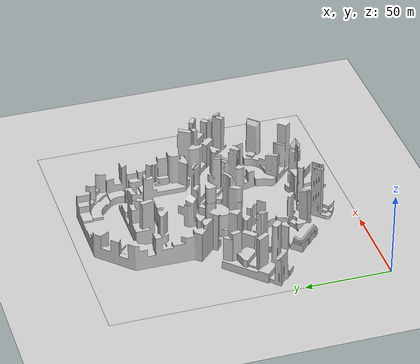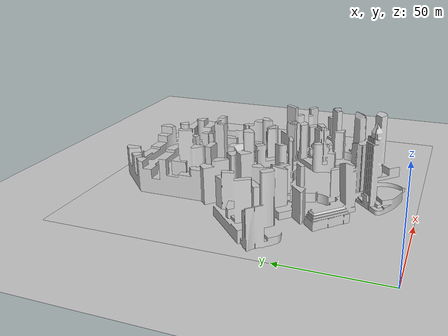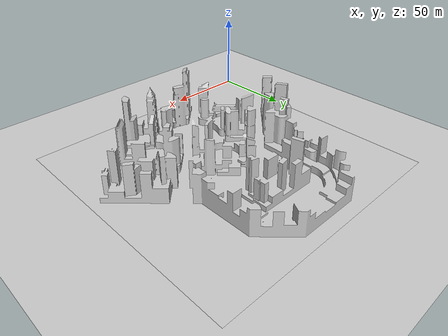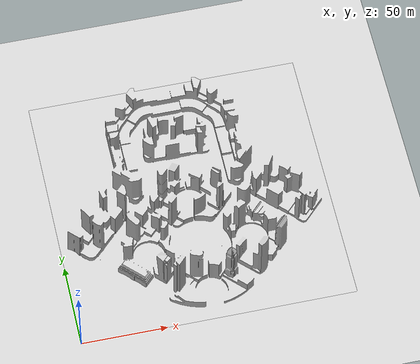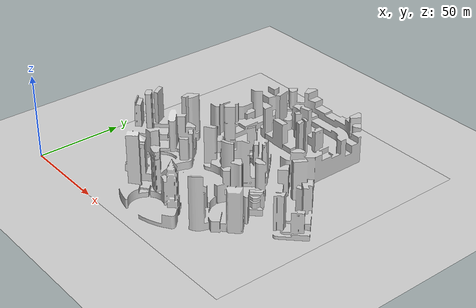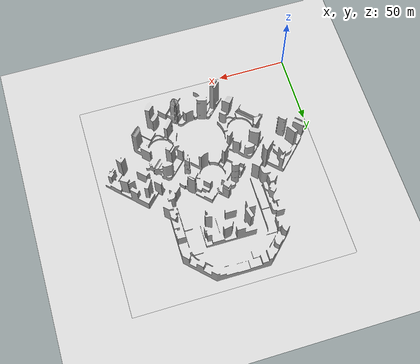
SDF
<sdf version='1.10'>
  <world name='city_1_world_arucos'>
    <physics type='ode'>
      <max_step_size>0.002</max_step_size>
      <real_time_factor>1</real_time_factor>
      <real_time_update_rate>1000</real_time_update_rate>
    </physics>
    <plugin name='gz::sim::systems::Physics' filename='libgz-sim-physics-system.so'/>
    <plugin name='gz::sim::systems::UserCommands' filename='libgz-sim-user-commands-system.so'/>
    <plugin name='gz::sim::systems::SceneBroadcaster' filename='libgz-sim-scene-broadcaster-system.so'/>
    <plugin name='gz::sim::systems::Contact' filename='libgz-sim-contact-system.so'/>
    <plugin name='gz::sim::systems::Imu' filename='libgz-sim-imu-system.so'/>
    <plugin name='gz::sim::systems::AirPressure' filename='libgz-sim-air-pressure-system.so'/>
    <plugin name='gz::sim::systems::Sensors' filename='libgz-sim-sensors-system.so'>
      <render_engine>ogre2</render_engine>
    </plugin>
    <gravity>0 0 -9.8066499999999994</gravity>
    <magnetic_field>6.0000000000000002e-06 2.3e-05 -4.1999999999999998e-05</magnetic_field>
    <atmosphere type='adiabatic'/>
    <scene>
      <grid>false</grid>
      <ambient>0.400000006 0.400000006 0.400000006 1</ambient>
      <background>0.699999988 0.699999988 0.699999988 1</background>
      <shadows>true</shadows>
    </scene>
    <model name='ground_plane'>
      <pose>60 60 0 0 0 0</pose>
      <static>true</static>
      <link name='link'>
        <collision name='collision'>
          <geometry>
            <plane>
              <normal>0 0 1</normal>
              <size>150 150</size>
            </plane>
          </geometry>
          <surface>
            <friction>
              <ode/>
            </friction>
            <bounce/>
            <contact/>
          </surface>
        </collision>
        <visual name='visual'>
          <geometry>
            <plane>
              <normal>0 0 1</normal>
              <size>150 150</size>
            </plane>
          </geometry>
          <material>
            <ambient>0.800000012 0.800000012 0.800000012 1</ambient>
            <diffuse>0.800000012 0.800000012 0.800000012 1</diffuse>
            <specular>0.800000012 0.800000012 0.800000012 1</specular>
          </material>
        </visual>
        <pose>0 0 0 0 0 0</pose>
        <inertial>
          <pose>0 0 0 0 0 0</pose>
          <mass>1</mass>
          <inertia>
            <ixx>1</ixx>
            <ixy>0</ixy>
            <ixz>0</ixz>
            <iyy>1</iyy>
            <iyz>0</iyz>
            <izz>1</izz>
          </inertia>
        </inertial>
        <enable_wind>false</enable_wind>
      </link>
      <self_collide>false</self_collide>
    </model>
    <include>
      <uri>file:///root/CrazySim/ros2_ws/src/icuas25_competition/launch/../worlds/city_1</uri>
      <name>city_1</name>
      <pose>0 0 0 0 0 0</pose>
    </include>

    <include>
      <uri>file:///root/CrazySim/ros2_ws/src/icuas25_competition/launch/../worlds/aruco_markers/aruco_marker_1</uri>
      <name>aruco_marker_1</name>
      <pose>88.587699890136719 34.341999053955078 19.570499420166016 1.5110288711004334 1.5700000418165962 0.00010043712494769711</pose>
    </include>
    <include>
      <uri>file:///root/CrazySim/ros2_ws/src/icuas25_competition/launch/../worlds/aruco_markers/aruco_marker_2</uri>
      <name>aruco_marker_2</name>
      <pose>49.917949676513672 76.811897277832031 7.4506697654724121 1.5700000042340219 0 0</pose>
    </include>
    <include>
      <uri>file:///root/CrazySim/ros2_ws/src/icuas25_competition/launch/../worlds/aruco_markers/aruco_marker_3</uri>
      <name>aruco_marker_3</name>
      <pose>20.760629653930664 47.960700988769531 5.7737393379211426 1.5701357991543534 1.5699999788855461 0.00013659516476215822</pose>
    </include>
    <include>
      <uri>file:///root/CrazySim/ros2_ws/src/icuas25_competition/launch/../worlds/aruco_markers/aruco_marker_4</uri>
      <name>aruco_marker_4</name>
      <pose>46.691200256347656 108.62621307373047 8.9865016937255859 1.5715899837054641 0.00010056037728358766 -0.12665099268998176</pose>
    </include>
    <include>
      <uri>file:///root/CrazySim/ros2_ws/src/icuas25_competition/launch/../worlds/aruco_markers/aruco_marker_5</uri>
      <name>aruco_marker_5</name>
      <pose>59.065990447998047 62.928287506103516 1.5549722909927368 1.5700000086716972 -1.9038041809693595e-08 1.5700000086716972</pose>
    </include>

    <light name='sun' type='directional'>
      <pose>0 0 100 0 0 0</pose>
      <cast_shadows>false</cast_shadows>
      <intensity>1</intensity>
      <direction>-0.5 0.10000000000000001 -0.90000000000000002</direction>
      <diffuse>0.800000012 0.800000012 0.800000012 1</diffuse>
      <specular>0.200000003 0.200000003 0.200000003 1</specular>
      <attenuation>
        <range>1000</range>
        <linear>0.01</linear>
        <constant>0.90000000000000002</constant>
        <quadratic>0.001</quadratic>
      </attenuation>
      <spot>
        <inner_angle>0</inner_angle>
        <outer_angle>0</outer_angle>
        <falloff>0</falloff>
      </spot>
    </light>
  </world>
</sdf>

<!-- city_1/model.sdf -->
<sdf version="1.9">
  <model name="city_1">
    <static>true</static>
    <link name="link">
      <collision name="collision">
        <geometry>
          <mesh>
            <uri>model://city_1/meshes/city_1.stl</uri>
          </mesh>
        </geometry>
      </collision>
      <visual name="visual">
        <geometry>
          <mesh>
            <uri>model://city_1/meshes/city_1.stl</uri>
          </mesh>
        </geometry>
        <material>
            <ambient>0.8 0.8 0.8 1</ambient>
            <diffuse>0.8 0.8 0.8 1</diffuse>
            <specular>0.8 0.8 0.8 1</specular>
        </material>
      </visual>
    </link>
  </model>
</sdf>

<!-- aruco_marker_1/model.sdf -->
<sdf version="1.9">
  <model name="aruco_marker_1">
    <static>true</static>
    <link name="link">
      <!-- ArUco Marker 0 -->
      <visual name="aruco_marker_1_vis">
        <pose>0 0 0 0 0 0</pose> <!-- Position: x, y, z; Rotation: roll, pitch, yaw -->
        <geometry>
          <plane>
            <normal>0 0 1</normal> <!-- Normal vector for the plane -->
            <size>0.25 0.25</size>   <!-- Size of the marker (e.g., 10cm x 10cm) -->
          </plane>
        </geometry>
        <material>
          <pbr>
            <metal>
              <albedo_map>marker_0001.png</albedo_map>
              <metalness>0.0</metalness>
            </metal>
          </pbr>
          <ambient>1 1 1 1</ambient>
          <diffuse>1 1 1 1</diffuse>
          <specular>0 0 0 1</specular>
        </material>
      </visual>
    </link>
  </model>
</sdf>

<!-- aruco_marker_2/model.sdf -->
<sdf version="1.9">
  <model name="aruco_marker_2">
    <static>true</static>
    <link name="link">
      <!-- ArUco Marker 0 -->
      <visual name="aruco_marker_2_vis">
        <pose>0 0 0 0 0 0</pose> <!-- Position: x, y, z; Rotation: roll, pitch, yaw -->
        <geometry>
          <plane>
            <normal>0 0 1</normal> <!-- Normal vector for the plane -->
            <size>0.25 0.25</size>   <!-- Size of the marker (e.g., 10cm x 10cm) -->
          </plane>
        </geometry>
        <material>
          <pbr>
            <metal>
              <albedo_map>marker_0002.png</albedo_map>
              <metalness>0.0</metalness>
            </metal>
          </pbr>
          <ambient>1 1 1 1</ambient>
          <diffuse>1 1 1 1</diffuse>
          <specular>0 0 0 1</specular>
        </material>
      </visual>
    </link>
  </model>
</sdf>

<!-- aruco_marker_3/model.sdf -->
<sdf version="1.9">
  <model name="aruco_marker_3">
    <static>true</static>
    <link name="link">
      <!-- ArUco Marker 0 -->
      <visual name="aruco_marker_3_vis">
        <pose>0 0 0 0 0 0</pose> <!-- Position: x, y, z; Rotation: roll, pitch, yaw -->
        <geometry>
          <plane>
            <normal>0 0 1</normal> <!-- Normal vector for the plane -->
            <size>0.25 0.25</size>   <!-- Size of the marker (e.g., 10cm x 10cm) -->
          </plane>
        </geometry>
        <material>
          <pbr>
            <metal>
              <albedo_map>marker_0003.png</albedo_map>
              <metalness>0.0</metalness>
            </metal>
          </pbr>
          <ambient>1 1 1 1</ambient>
          <diffuse>1 1 1 1</diffuse>
          <specular>0 0 0 1</specular>
        </material>
      </visual>
    </link>
  </model>
</sdf>

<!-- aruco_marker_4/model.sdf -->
<sdf version="1.9">
  <model name="aruco_marker_4">
    <static>true</static>
    <link name="link">
      <!-- ArUco Marker 0 -->
      <visual name="aruco_marker_4_vis">
        <pose>0 0 0 0 0 0</pose> <!-- Position: x, y, z; Rotation: roll, pitch, yaw -->
        <geometry>
          <plane>
            <normal>0 0 1</normal> <!-- Normal vector for the plane -->
            <size>0.25 0.25</size>   <!-- Size of the marker (e.g., 10cm x 10cm) -->
          </plane>
        </geometry>
        <material>
          <pbr>
            <metal>
              <albedo_map>marker_0004.png</albedo_map>
              <metalness>0.0</metalness>
            </metal>
          </pbr>
          <ambient>1 1 1 1</ambient>
          <diffuse>1 1 1 1</diffuse>
          <specular>0 0 0 1</specular>
        </material>
      </visual>
    </link>
  </model>
</sdf>

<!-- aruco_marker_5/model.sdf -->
<sdf version="1.9">
  <model name="aruco_marker_5">
    <static>true</static>
    <link name="link">
      <!-- ArUco Marker 0 -->
      <visual name="aruco_marker_5_vis">
        <pose>0 0 0 0 0 0</pose> <!-- Position: x, y, z; Rotation: roll, pitch, yaw -->
        <geometry>
          <plane>
            <normal>0 0 1</normal> <!-- Normal vector for the plane -->
            <size>0.25 0.25</size>   <!-- Size of the marker -->
          </plane>
        </geometry>
        <material>
          <pbr>
            <metal>
              <albedo_map>marker_0005.png</albedo_map>
              <metalness>0.0</metalness>
            </metal>
          </pbr>
          <ambient>1 1 1 1</ambient>
          <diffuse>1 1 1 1</diffuse>
          <specular>0 0 0 1</specular>
        </material>
      </visual>
    </link>
  </model>
</sdf>
